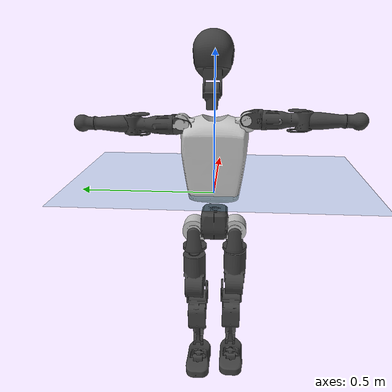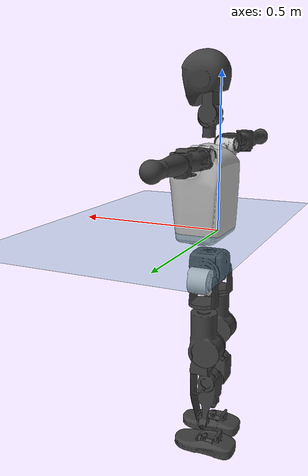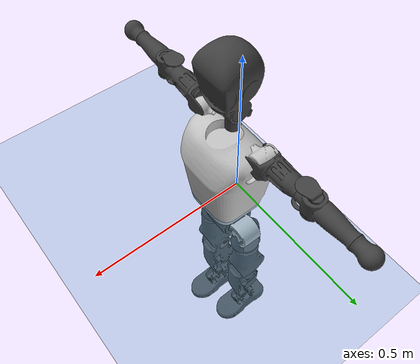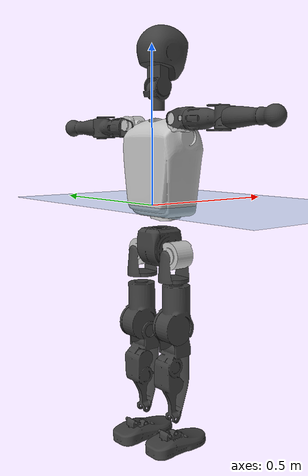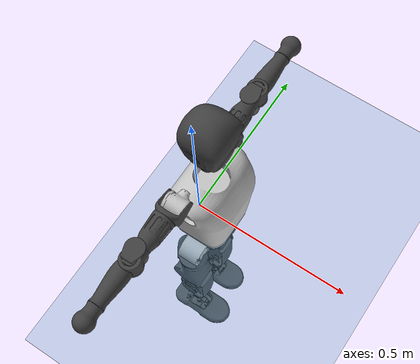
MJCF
<mujoco model="T1">
  <compiler angle="radian" assetdir="assets" balanceinertia="true" inertiafromgeom="false"/>

  <option timestep="0.005" density="1.2" viscosity="2e-05"/>

  <size nkey="1"/>

  <visual>
    <quality shadowsize="8192"/>
    <map shadowclip="0.5"/>
  </visual>

  <default>
    <default class="/">
      <joint armature="0.01" damping="0.01" frictionloss="0.1"/>
      <geom contype="0" conaffinity="0" group="1" solref="-1000 -80"/>
      <site size="0.01 0.005 0.005" group="5"/>
      <general forcelimited="true" biastype="affine" gainprm="25" biasprm="0 -25 -0.6"/>
      <default class="t1">
        <geom rgba="0.25 0.25 0.25 1"/>
        <default class="visual">
          <geom type="mesh" group="2"/>
        </default>
        <default class="collision">
          <geom group="3"/>
        </default>
        <default class="foot">
          <geom size="0.1115 0.05 0.015" type="box" condim="6" group="4" priority="1" solimp="0.015 1 0.015"/>
        </default>
        <default class="reward_collision_sphere">
          <geom group="5" rgba="1 0 0 1"/>
        </default>
      </default>
    </default>
  </default>

  <asset>
    <texture type="skybox" colorspace="auto" name="//unnamed_texture_0" builtin="gradient" rgb1="0.95 0.95 0.95" rgb2="0.95 0.95 0.95" width="100" height="600"/>
    <texture type="2d" colorspace="auto" name="texplane" builtin="checker" rgb1="0.345 0.575 0.748" rgb2="0.345 0.575 0.748" markrgb="1 1 1" width="512" height="512"/>
    <material name="MatPlane" class="/" texture="texplane" texuniform="true" texrepeat="2 2" specular="0.9"/>
    <mesh name="Trunk" class="/" file="Trunk.stl"/>
    <mesh name="H1" class="/" file="H1.stl"/>
    <mesh name="H2" class="/" file="H2.stl"/>
    <mesh name="AL1" class="/" file="AL1.stl"/>
    <mesh name="AL2" class="/" file="AL2.stl"/>
    <mesh name="AL3" class="/" file="AL3.stl"/>
    <mesh name="left_hand_link" class="/" file="left_hand_link.stl"/>
    <mesh name="AR1" class="/" file="AR1.stl"/>
    <mesh name="AR2" class="/" file="AR2.stl"/>
    <mesh name="AR3" class="/" file="AR3.stl"/>
    <mesh name="right_hand_link" class="/" file="right_hand_link.stl"/>
    <mesh name="Waist" class="/" file="Waist.stl"/>
    <mesh name="Hip_Pitch_Left" class="/" file="Hip_Pitch_Left.stl"/>
    <mesh name="Hip_Roll_Left" class="/" file="Hip_Roll_Left.stl"/>
    <mesh name="Hip_Yaw_Left" class="/" file="Hip_Yaw_Left.stl"/>
    <mesh name="Shank_Left" class="/" file="Shank_Left.stl"/>
    <mesh name="Ankle_Cross_Left" class="/" file="Ankle_Cross_Left.stl"/>
    <mesh name="left_foot_link" class="/" file="left_foot_link.stl"/>
    <mesh name="Hip_Pitch_Right" class="/" file="Hip_Pitch_Right.stl"/>
    <mesh name="Hip_Roll_Right" class="/" file="Hip_Roll_Right.stl"/>
    <mesh name="Hip_Yaw_Right" class="/" file="Hip_Yaw_Right.stl"/>
    <mesh name="Shank_Right" class="/" file="Shank_Right.stl"/>
    <mesh name="Ankle_Cross_Right" class="/" file="Ankle_Cross_Right.stl"/>
    <mesh name="right_foot_link" class="/" file="right_foot_link.stl"/>
  </asset>

  <worldbody>
    <geom name="floor" class="/" size="100 100 0.125" type="plane" group="0" material="MatPlane"/>
    <light name="toplight_shadow" class="/" pos="0 0 5" dir="0.0990148 0.0990148 -0.990148" type="directional" ambient="0.04 0.04 0.04" diffuse="0.55 0.55 0.55" specular="0.12 0.12 0.12"/>
    <light name="toplight_fill" class="/" pos="0 0 5" dir="0.0990148 0.0990148 -0.990148" type="directional" castshadow="false" ambient="0.04 0.04 0.04" diffuse="0.3 0.3 0.3" specular="0.08 0.08 0.08"/>
    <body name="trunk" childclass="t1" pos="-0.00606708 0.00115452 -0.00176215" quat="1 -1.16009e-05 1.96785e-05 8.19604e-05">
      <inertial pos="0.0245089 -0.00275646 0.129528" quat="0.999866 -0.00314793 -0.0127388 -0.00976595" mass="5.40972" diaginertia="0.00152983 0.0195899 0.127299"/>
      <joint name="//unnamed_joint_0" type="free" armature="0" damping="0" frictionloss="0"/>
      <geom name="//unnamed_geom_1" class="visual" rgba="0.76 0.76 0.76 1" mesh="Trunk"/>
      <geom name="//unnamed_geom_2" class="collision" size="0.0601302 0.0801736 0.12026" pos="0.0270702 0 0.142877" type="box"/>
      <geom name="//unnamed_geom_3" class="reward_collision_sphere" size="0.0921997" pos="0.0270702 0 0.119064"/>
      <geom name="//unnamed_geom_4" class="reward_collision_sphere" size="0.012026" pos="0.0270702 0.0648885 0"/>
      <geom name="//unnamed_geom_5" class="reward_collision_sphere" size="0.012026" pos="0.0270702 -0.0648885 0"/>
      <geom name="//unnamed_geom_6" class="reward_collision_sphere" size="0.012026" pos="0.0270702 0.0816831 0.214316"/>
      <geom name="//unnamed_geom_7" class="reward_collision_sphere" size="0.012026" pos="0.0270702 -0.0816831 0.214316"/>
      <site name="imu" pos="0.0513032 0.0168142 -0.0348006" size="0.00801736"/>
      <camera name="track" pos="0 -1.52679 0" quat="0.707107 0.707107 0 0" mode="trackcom"/>
      <camera name="ego_camera" pos="0.0550428 0 0.500071" quat="-0.5 -0.5 0.5 0.5"/>
      <body name="H1" pos="0.0398634 0.0106501 0.300964" quat="1 -0.000403055 5.82736e-05 -0.000612994">
        <inertial pos="0.00490512 -0.00419898 0.0723576" quat="0.768997 -0.0494434 -0.034512 0.636402" mass="0.201654" diaginertia="4.50972e-06 6.45153e-05 0.000343284"/>
        <joint name="AAHead_yaw" pos="0 0 0" axis="0.0392252 0.0301741 0.998775" range="-1.5978 1.52836" armature="0.00475739" damping="0" frictionloss="0.0610455"/>
        <geom name="//unnamed_geom_8" class="visual" mesh="H1"/>
        <body name="H2" pos="-0.00276105 -0.00194106 0.0736805" quat="0.999992 0.00366339 0.00046131 0.00146433">
          <inertial pos="0.00273044 0.01206 0.115976" quat="0.988512 0.106066 -0.0723502 -0.0797525" mass="0.298451" diaginertia="4.0235e-05 0.000519803 0.00397366"/>
          <joint name="Head_pitch" pos="0 0 0" axis="-0.00185126 -0.999998 0.00094835" stiffness="0.0226613" range="-1.25111 0.341173" armature="0.00577224" damping="0.000986708" frictionloss="0.0819378"/>
          <geom name="//unnamed_geom_9" class="visual" mesh="H2"/>
          <geom name="//unnamed_geom_10" class="collision" size="0.0641389" pos="0.00451171 0 0.130971"/>
          <geom name="//unnamed_geom_11" class="reward_collision_sphere" size="0.0721563" pos="0.00902341 0 0.119064"/>
        </body>
      </body>
      <body name="AL1" pos="0.0230331 0.0716162 0.255314" quat="1 3.09958e-05 0.000319516 0.000136132">
        <inertial pos="0.0105085 0.023949 0.00747494" quat="0.50183 0.499392 -0.506049 0.492634" mass="0.243507" diaginertia="2.24324e-05 0.000295779 0.00064439"/>
        <joint name="Left_Shoulder_Pitch" pos="0 0 0" axis="0.023113 0.999507 0.0212281" range="-3.37989 1.23398" armature="0.0059644" damping="0" frictionloss="0.105895"/>
        <geom name="//unnamed_geom_12" class="visual" rgba="0.76 0.76 0.76 1" mesh="AL1"/>
        <body name="AL2" pos="0.00197416 0.0272397 -0.00615515" quat="0.999999 -0.000506524 -0.000307779 -0.00130082">
          <inertial pos="0.00215348 0.0299682 -0.00456103" quat="0.488526 0.510979 -0.488311 0.51166" mass="0.0790323" diaginertia="5.93531e-06 6.73091e-05 0.000395764"/>
          <joint name="Left_Shoulder_Roll" pos="0 0 0" axis="-0.99987 -0.0153421 0.00500826" stiffness="0.00111822" range="-1.69566 1.92222" armature="0.00798649" damping="0" frictionloss="0.0769753"/>
          <geom name="//unnamed_geom_13" class="visual" mesh="AL2"/>
          <body name="AL3" pos="-0.0102223 0.0452529 -0.000147131" quat="0.999996 -0.000123151 -0.00275045 -0.000488698">
            <inertial pos="-0.00120944 0.0642672 -0.00807377" quat="0.713317 0.699825 0.0376016 0.00314728" mass="0.515341" diaginertia="0.000212052 0.00327171 0.00146351"/>
            <joint name="Left_Elbow_Pitch" pos="0 0 0" axis="-0.0023105 -0.999991 0.00359547" stiffness="0.0105005" range="-2.29283 2.10202" armature="0.0114503" damping="0.0228933" frictionloss="0.0730327"/>
            <geom name="//unnamed_geom_14" class="visual" mesh="AL3"/>
            <geom name="//unnamed_geom_15" class="collision" size="0.0240521 0.0601302" pos="0 0.0381697 0" quat="0.707105 0.707108 0 0" type="cylinder"/>
            <geom name="//unnamed_geom_16" class="reward_collision_sphere" size="0.0288625"/>
            <body name="left_hand_link" pos="-0.00254299 0.112683 0.00218735" quat="0.999993 0.00109478 -0.00314694 -0.00152502">
              <inertial pos="-0.0120385 0.0921057 0.000312187" quat="0.707821 0.706273 -0.0109254 0.00700313" mass="0.179793" diaginertia="0.000147871 0.00207633 0.000570475"/>
              <joint name="Left_Elbow_Yaw" pos="0 0 0" axis="-0.0293427 0.00872626 0.999531" range="-2.53082 0.108364" armature="0.00476277" damping="0" frictionloss="0.0493068"/>
              <geom name="//unnamed_geom_17" class="visual" mesh="left_hand_link"/>
              <geom name="//unnamed_geom_18" class="collision" size="0.0240521 0.0701519" pos="0 0.0992412 0" quat="0.707105 0.707108 0 0" type="cylinder"/>
              <geom name="//unnamed_geom_19" class="reward_collision_sphere" size="0.0400868"/>
              <geom name="//unnamed_geom_20" class="reward_collision_sphere" size="0.0280608" pos="0 0.0839733 0"/>
              <geom name="//unnamed_geom_21" class="reward_collision_sphere" size="0.0280608" pos="0 0.16413 0"/>
            </body>
          </body>
        </body>
      </body>
      <body name="AR1" pos="0.0250745 -0.0717398 0.261787" quat="0.999996 0.000301593 0.00165025 -0.00204745">
        <inertial pos="-0.0044178 -0.0364862 -0.000121355" quat="0.505842 0.494001 -0.50367 0.49639" mass="0.26597" diaginertia="2.60031e-05 0.000325582 0.000677608"/>
        <joint name="Right_Shoulder_Pitch" pos="0 0 0" axis="0.000302592 -1 0.000380587" range="-1.1912 3.27006" armature="0.00576067" damping="0.0567655" frictionloss="0.100627"/>
        <geom name="//unnamed_geom_22" class="visual" rgba="0.76 0.76 0.76 1" mesh="AR1"/>
        <body name="AR2" pos="-0.00135917 -0.0394918 0.00974194" quat="1 8.73953e-05 -4.2129e-05 2.7927e-05">
          <inertial pos="0.00673523 -0.0364701 0.0108662" quat="0.510414 0.484413 -0.512343 0.492266" mass="0.0777127" diaginertia="6.88328e-06 9.36746e-05 0.000374023"/>
          <joint name="Right_Shoulder_Roll" pos="0 0 0" axis="-0.999864 -0.0017645 0.0164264" stiffness="0.0437008" range="-1.9638 1.56601" armature="0.00672524" damping="0" frictionloss="0.0736069"/>
          <geom name="//unnamed_geom_23" class="visual" mesh="AR2"/>
          <body name="AR3" pos="-0.00217267 -0.0521029 -0.00198961" quat="1 -0.00065789 0.000408127 -0.000197692">
            <inertial pos="0.00989506 -0.0677262 -0.00045036" quat="0.700376 0.713471 -0.00523756 0.0201278" mass="0.533832" diaginertia="0.000244611 0.0033404 0.00131042"/>
            <joint name="Right_Elbow_Pitch" pos="0 0 0" axis="0.0148088 0.99976 -0.0161308" stiffness="0.0384985" range="-2.28294 2.38675" armature="0.00739498" damping="0.00721674" frictionloss="0.120586"/>
            <geom name="//unnamed_geom_24" class="visual" mesh="AR3"/>
            <geom name="//unnamed_geom_25" class="collision" size="0.0240521 0.0601302" pos="0 -0.0381697 0" quat="0.707105 0.707108 0 0" type="cylinder"/>
            <geom name="//unnamed_geom_26" class="reward_collision_sphere" size="0.0288625"/>
            <body name="right_hand_link" pos="-0.00583398 -0.117404 -0.000227604" quat="0.999999 -0.0010613 5.89847e-05 -1.39613e-05">
              <inertial pos="0.00101649 -0.0832743 -0.0079548" quat="0.706514 0.707694 -0.000840041 -0.00246303" mass="0.164025" diaginertia="0.000150346 0.00233793 0.000534854"/>
              <joint name="Right_Elbow_Yaw" pos="0 0 0" axis="0.0027793 0.00302054 0.999992" range="-0.108325 2.48916" armature="0.00867105" damping="0.0180934" frictionloss="0.118262"/>
              <geom name="//unnamed_geom_27" class="visual" mesh="right_hand_link"/>
              <geom name="//unnamed_geom_28" class="collision" size="0.0240521 0.0701519" pos="0 -0.0992412 0" quat="0.707105 0.707108 0 0" type="cylinder"/>
              <geom name="//unnamed_geom_29" class="reward_collision_sphere" size="0.0400868"/>
              <geom name="//unnamed_geom_30" class="reward_collision_sphere" size="0.0280608" pos="0 -0.0839733 0"/>
              <geom name="//unnamed_geom_31" class="reward_collision_sphere" size="0.0280608" pos="0 -0.16413 0"/>
            </body>
          </body>
        </body>
      </body>
      <body name="Waist" pos="0.033249 -0.00336818 -0.138847" quat="1 -0.000230197 -7.67964e-05 -0.000544093">
        <inertial pos="0.00365898 -0.00230706 0.00742923" quat="0.980786 0.0199236 -0.194044 -0.0030474" mass="1.46839" diaginertia="8.73892e-05 0.00138812 0.00986622"/>
        <joint name="Waist" pos="0 0 0" axis="0.0347424 -0.016788 0.999255" range="-1.46315 1.6745" armature="0.00861753" damping="0" frictionloss="0.11795"/>
        <geom name="//unnamed_geom_32" class="visual" mesh="Waist"/>
        <body name="Hip_Pitch_Left" pos="0.00171881 0.0791606 0.00183534" quat="0.999999 0.000851811 -0.000882761 2.49413e-05">
          <inertial pos="0.000760675 0.00224381 -0.024265" quat="0.979276 0.202448 0.00554069 0.001437" mass="0.522907" diaginertia="3.53621e-05 0.000335572 0.00258307"/>
          <joint name="Left_Hip_Pitch" pos="0 0 0" axis="0.000589941 0.999999 0.000871743" range="-1.75612 1.56939" armature="0.00576313" damping="0" frictionloss="0.0819284"/>
          <geom name="//unnamed_geom_33" class="visual" rgba="0.76 0.76 0.76 1" mesh="Hip_Pitch_Left"/>
          <body name="Hip_Roll_Left" pos="-0.00976724 -0.00100037 -0.0236113" quat="0.99999 -0.00412635 -0.000100141 -0.00160207">
            <inertial pos="-0.00558768 0.00197501 -0.0648947" quat="0.711658 -0.00375318 -0.000918046 0.702515" mass="0.247418" diaginertia="4.22705e-05 0.000449841 0.00139969"/>
            <joint name="Left_Hip_Roll" pos="0 0 0" axis="-0.999099 -0.0272228 -0.0325612" range="-1.77491 0.173887" armature="0.0101222" damping="0.0292676" frictionloss="0.0926238"/>
            <geom name="//unnamed_geom_34" class="visual" mesh="Hip_Roll_Left"/>
            <geom name="//unnamed_geom_35" class="reward_collision_sphere" size="0.0440955"/>
            <body name="Hip_Yaw_Left" pos="-0.00491565 0.00199802 -0.102494" quat="0.99999 -0.000939899 -0.0020641 0.00390197">
              <inertial pos="0.00730182 0.000928075 -0.10426" quat="0.698356 -0.0380709 -0.0347184 0.713894" mass="1.09203" diaginertia="0.000419705 0.00670064 0.0063095"/>
              <joint name="Left_Hip_Yaw" pos="0 0 0" axis="0.00756876 0.00214902 -0.999969" stiffness="0.0462864" range="-1.22239 0.82562" armature="0.00771181" damping="0.0100744" frictionloss="0.0476807"/>
              <geom name="//unnamed_geom_36" class="visual" mesh="Hip_Yaw_Left"/>
              <geom name="//unnamed_geom_37" class="collision" size="0.0400868 0.0641389" type="cylinder"/>
              <body name="Shank_Left" pos="-0.00663502 -0.00976919 -0.156992" quat="1 -9.3893e-05 0.000135713 0.000257772">
                <inertial pos="0.00834012 -0.00142342 -0.150056" quat="0.994957 -0.0260094 -0.0718597 0.0649582" mass="0.972523" diaginertia="0.000666795 0.00779402 0.00418687"/>
                <joint name="Left_Knee_Pitch" pos="0 0 0" axis="-0.0131477 0.999164 -0.0387192" range="0.035205 2.19282" armature="0.0106713" damping="0.00385878" frictionloss="0.0386791"/>
                <geom name="//unnamed_geom_38" class="visual" mesh="Shank_Left"/>
                <geom name="//unnamed_geom_39" class="collision" size="0.0400868 0.0601302" pos="0 0 -0.142877" type="cylinder"/>
                <geom name="//unnamed_geom_40" class="reward_collision_sphere" size="0.0521129"/>
                <body name="Ankle_Cross_Left" pos="1.6736e-05 -0.000885976 -0.336975" quat="1 -0.000156025 -0.000171053 -4.79222e-05">
                  <inertial pos="3.39185e-05 -0.000664382 -0.0105026" quat="0.442228 0.554582 0.550099 0.440754" mass="0.0355507" diaginertia="4.85119e-07 6.32167e-06 2.53739e-05"/>
                  <joint name="Left_Ankle_Pitch" pos="0 0 0" axis="-0.0319763 0.999378 0.0148784" stiffness="0.0120647" range="-0.886078 0.47484" armature="0.00359323" damping="0.00814811" frictionloss="0.0951573"/>
                  <geom name="//unnamed_geom_41" class="visual" mesh="Ankle_Cross_Left"/>
                  <body name="left_foot_link" pos="-0.0112458 -0.000866822 -0.0107821" quat="1 9.53244e-05 7.1972e-05 -2.50382e-05">
                    <inertial pos="0.0101019 -0.00605408 -0.0103978" quat="0.00146815 0.619772 0.000625381 0.78478" mass="0.358342" diaginertia="4.99148e-05 0.000617115 0.00585894"/>
                    <joint name="Left_Ankle_Roll" pos="0 0 0" axis="-0.999929 -0.00993837 -0.00655677" range="-0.545721 0.523874" armature="0.00782326" damping="0.0629843" frictionloss="0.0787769"/>
                    <geom name="//unnamed_geom_42" class="visual" mesh="left_foot_link"/>
                    <geom name="left_foot" class="foot" size="0.105298 0.0535502 0.014261" pos="0.00451171 0 -0.0178597"/>
                    <geom name="//unnamed_geom_44" class="reward_collision_sphere" size="0.0416903" pos="0.00451171 0 -0.0178597"/>
                    <geom name="//unnamed_geom_45" class="reward_collision_sphere" size="0.0240521" pos="0.0428612 -0.0175581 -0.0178597"/>
                    <geom name="//unnamed_geom_46" class="reward_collision_sphere" size="0.0240521" pos="-0.031582 -0.0175581 -0.0178597"/>
                    <site name="left_foot" class="foot" pos="0.00451171 0 -0.0178597" size="0.00801736"/>
                  </body>
                </body>
              </body>
            </body>
          </body>
        </body>
        <body name="Hip_Pitch_Right" pos="0.00555698 -0.0794253 0.00605167" quat="1 -6.41469e-05 -2.56652e-06 5.75859e-05">
          <inertial pos="4.01369e-05 0.00554784 -0.0128047" quat="0.972683 -0.231011 0.0205146 -0.0100787" mass="0.529174" diaginertia="3.81084e-05 0.000331966 0.00283388"/>
          <joint name="Right_Hip_Pitch" pos="0 0 0" axis="0.017849 -0.999835 -0.00347267" stiffness="0.0160391" range="-1.32942 1.58682" armature="0.0090834" damping="0" frictionloss="0.120359"/>
          <geom name="//unnamed_geom_47" class="visual" rgba="0.76 0.76 0.76 1" mesh="Hip_Pitch_Right"/>
          <body name="Hip_Roll_Right" pos="-0.0102085 -0.000424436 -0.0259147" quat="0.999998 -0.000470578 -0.00204215 0.000363447">
            <inertial pos="0.00244788 0.00748396 -0.0717057" quat="0.703446 -0.0102061 -0.0121269 0.710572" mass="0.219084" diaginertia="3.53304e-05 0.000448814 0.00119001"/>
            <joint name="Right_Hip_Roll" pos="0 0 0" axis="-0.998748 0.0470287 -0.0170676" range="-0.172889 1.58486" armature="0.0105939" damping="0" frictionloss="0.078587"/>
            <geom name="//unnamed_geom_48" class="visual" mesh="Hip_Roll_Right"/>
            <geom name="//unnamed_geom_49" class="reward_collision_sphere" size="0.0440955"/>
            <body name="Hip_Yaw_Right" pos="0.00443098 -0.0031572 -0.0895431" quat="1 0.00044907 0.000202917 9.36015e-06">
              <inertial pos="-0.00762542 -0.00962732 -0.100844" quat="0.704975 -0.00777361 -0.0856571 0.703998" mass="1.11179" diaginertia="0.000471213 0.00683996 0.00642585"/>
              <joint name="Right_Hip_Yaw" pos="0 0 0" axis="-0.0017792 0.00178087 -0.999997" stiffness="0.00360105" range="-0.96797 0.973681" armature="0.00780783" damping="0.0041594" frictionloss="0.0817228"/>
              <geom name="//unnamed_geom_50" class="visual" mesh="Hip_Yaw_Right"/>
              <geom name="//unnamed_geom_51" class="collision" size="0.0400868 0.0641389" type="cylinder"/>
              <body name="Shank_Right" pos="-0.00669848 0.0101356 -0.167358" quat="1 -3.03922e-05 -0.000450356 -0.000789387">
                <inertial pos="0.00802588 -0.011962 -0.142156" quat="0.997159 -0.00210282 -0.0293477 -0.0693403" mass="0.829196" diaginertia="0.000726279 0.00984926 0.00494449"/>
                <joint name="Right_Knee_Pitch" pos="0 0 0" axis="0.00251332 -0.999996 -0.00118307" range="-2.24758 0.0181827" armature="0.0079716" damping="0.00468639" frictionloss="0.0952226"/>
                <geom name="//unnamed_geom_52" class="visual" mesh="Shank_Right"/>
                <geom name="//unnamed_geom_53" class="collision" size="0.0400868 0.0601302" pos="0 0 -0.142877" type="cylinder"/>
                <geom name="//unnamed_geom_54" class="reward_collision_sphere" size="0.0521129"/>
                <body name="Ankle_Cross_Right" pos="0.00407294 -0.00216792 -0.332584" quat="1 -0.000401724 0.000325823 -0.000503423">
                  <inertial pos="-0.000115172 0.0085271 -0.0111178" quat="0.43482 0.518414 0.590503 0.43987" mass="0.0363607" diaginertia="5.28202e-07 8.44851e-06 2.95875e-05"/>
                  <joint name="Right_Ankle_Pitch" pos="0 0 0" axis="-0.0317491 -0.999397 0.0140512" range="-0.43483 0.872185" armature="0.00510322" damping="0.0528801" frictionloss="0.0730648"/>
                  <geom name="//unnamed_geom_55" class="visual" mesh="Ankle_Cross_Right"/>
                  <body name="right_foot_link" pos="0.00117185 -0.00279951 -0.0236553" quat="1 -6.91772e-05 -7.8962e-05 9.41661e-05">
                    <inertial pos="0.00100342 -0.00279023 -0.0199933" quat="-0.0259327 0.625269 0.00499171 0.779963" mass="0.3533" diaginertia="4.46323e-05 0.000597405 0.00509164"/>
                    <joint name="Right_Ankle_Roll" pos="0 0 0" axis="-0.999954 0.00710523 0.00646736" range="-0.473924 0.554398" armature="0.00848967" damping="0" frictionloss="0.104824"/>
                    <geom name="//unnamed_geom_56" class="visual" mesh="right_foot_link"/>
                    <geom name="right_foot" class="foot" size="0.0931941 0.0419677 0.01086" pos="0.00451171 0 -0.0178597"/>
                    <geom name="//unnamed_geom_58" class="reward_collision_sphere" size="0.0320695"/>
                    <geom name="//unnamed_geom_59" class="reward_collision_sphere" size="0.0240521" pos="0.00451171 0 -0.0178597"/>
                    <geom name="//unnamed_geom_60" class="reward_collision_sphere" size="0.0240521" pos="0.0428612 0.0175581 -0.0178597"/>
                    <geom name="//unnamed_geom_61" class="reward_collision_sphere" size="0.0240521" pos="-0.031582 0.0175581 -0.0178597"/>
                    <site name="right_foot" class="foot" pos="0.00451171 0 -0.0178597" size="0.00801736"/>
                  </body>
                </body>
              </body>
            </body>
          </body>
        </body>
      </body>
    </body>
  </worldbody>

  <contact>
    <pair class="/" geom1="floor" geom2="left_foot" name="//unnamed_contact_0"/>
    <pair class="/" geom1="floor" geom2="right_foot" name="//unnamed_contact_1"/>
  </contact>

  <actuator>
    <general name="AAHead_yaw" class="/" joint="AAHead_yaw" forcerange="-4.24898 4.24898" gainprm="18.6268" biasprm="0 -18.6268 -0.576535"/>
    <general name="Head_pitch" class="/" joint="Head_pitch" forcerange="-5.52684 5.52684" gainprm="18.6268" biasprm="0 -18.6268 -0.576535"/>
    <general name="Left_Shoulder_Pitch" class="/" joint="Left_Shoulder_Pitch" forcerange="-15.1961 15.1961" gainprm="18.6268" biasprm="0 -18.6268 -0.576535"/>
    <general name="Left_Shoulder_Roll" class="/" joint="Left_Shoulder_Roll" forcerange="-13.4852 13.4852" gainprm="18.6268" biasprm="0 -18.6268 -0.576535"/>
    <general name="Left_Elbow_Pitch" class="/" joint="Left_Elbow_Pitch" forcerange="-10.652 10.652" gainprm="18.6268" biasprm="0 -18.6268 -0.576535"/>
    <general name="Left_Elbow_Yaw" class="/" joint="Left_Elbow_Yaw" forcerange="-11.8143 11.8143" gainprm="18.6268" biasprm="0 -18.6268 -0.576535"/>
    <general name="Right_Shoulder_Pitch" class="/" joint="Right_Shoulder_Pitch" forcerange="-16.3819 16.3819" gainprm="18.6268" biasprm="0 -18.6268 -0.576535"/>
    <general name="Right_Shoulder_Roll" class="/" joint="Right_Shoulder_Roll" forcerange="-15.0266 15.0266" gainprm="18.6268" biasprm="0 -18.6268 -0.576535"/>
    <general name="Right_Elbow_Pitch" class="/" joint="Right_Elbow_Pitch" forcerange="-14.7101 14.7101" gainprm="18.6268" biasprm="0 -18.6268 -0.576535"/>
    <general name="Right_Elbow_Yaw" class="/" joint="Right_Elbow_Yaw" forcerange="-13.7869 13.7869" gainprm="18.6268" biasprm="0 -18.6268 -0.576535"/>
    <general name="Waist" class="/" joint="Waist" forcerange="-24.4437 24.4437" gainprm="18.6268" biasprm="0 -18.6268 -0.576535"/>
    <general name="Left_Hip_Pitch" class="/" joint="Left_Hip_Pitch" forcerange="-35.3442 35.3442" gainprm="18.6268" biasprm="0 -18.6268 -0.576535"/>
    <general name="Left_Hip_Roll" class="/" joint="Left_Hip_Roll" forcerange="-23.9107 23.9107" gainprm="18.6268" biasprm="0 -18.6268 -0.576535"/>
    <general name="Left_Hip_Yaw" class="/" joint="Left_Hip_Yaw" forcerange="-30.5223 30.5223" gainprm="18.6268" biasprm="0 -18.6268 -0.576535"/>
    <general name="Left_Knee_Pitch" class="/" joint="Left_Knee_Pitch" forcerange="-40.5365 40.5365" gainprm="18.6268" biasprm="0 -18.6268 -0.576535"/>
    <general name="Left_Ankle_Pitch" class="/" joint="Left_Ankle_Pitch" forcerange="-18.7016 18.7016" gainprm="18.6268" biasprm="0 -18.6268 -0.576535"/>
    <general name="Left_Ankle_Roll" class="/" joint="Left_Ankle_Roll" forcerange="-11.2625 11.2625" gainprm="18.6268" biasprm="0 -18.6268 -0.576535"/>
    <general name="Right_Hip_Pitch" class="/" joint="Right_Hip_Pitch" forcerange="-34.6409 34.6409" gainprm="18.6268" biasprm="0 -18.6268 -0.576535"/>
    <general name="Right_Hip_Roll" class="/" joint="Right_Hip_Roll" forcerange="-24.0043 24.0043" gainprm="18.6268" biasprm="0 -18.6268 -0.576535"/>
    <general name="Right_Hip_Yaw" class="/" joint="Right_Hip_Yaw" forcerange="-26.1296 26.1296" gainprm="18.6268" biasprm="0 -18.6268 -0.576535"/>
    <general name="Right_Knee_Pitch" class="/" joint="Right_Knee_Pitch" forcerange="-61.488 61.488" gainprm="18.6268" biasprm="0 -18.6268 -0.576535"/>
    <general name="Right_Ankle_Pitch" class="/" joint="Right_Ankle_Pitch" forcerange="-21.4349 21.4349" gainprm="18.6268" biasprm="0 -18.6268 -0.576535"/>
    <general name="Right_Ankle_Roll" class="/" joint="Right_Ankle_Roll" forcerange="-11.0547 11.0547" gainprm="18.6268" biasprm="0 -18.6268 -0.576535"/>
  </actuator>

  <sensor>
    <gyro site="imu" name="imu_angular_velocity"/>
    <velocimeter site="imu" name="imu_linear_velocity"/>
    <framelinvel objtype="site" objname="left_foot" name="left_foot_global_linear_velocity"/>
    <framelinvel objtype="site" objname="right_foot" name="right_foot_global_linear_velocity"/>
  </sensor>

  <keyframe>
    <key name="home" qpos="0 0 0.6385 1 0 0 0 0 0 0 1.4 0 -0.4 0 -1.4 0 0.4 0 -0.4 0 0 0.8 -0.4 0 0.4 0 0 -0.8 0.4 0"/>
  </keyframe>
</mujoco>
